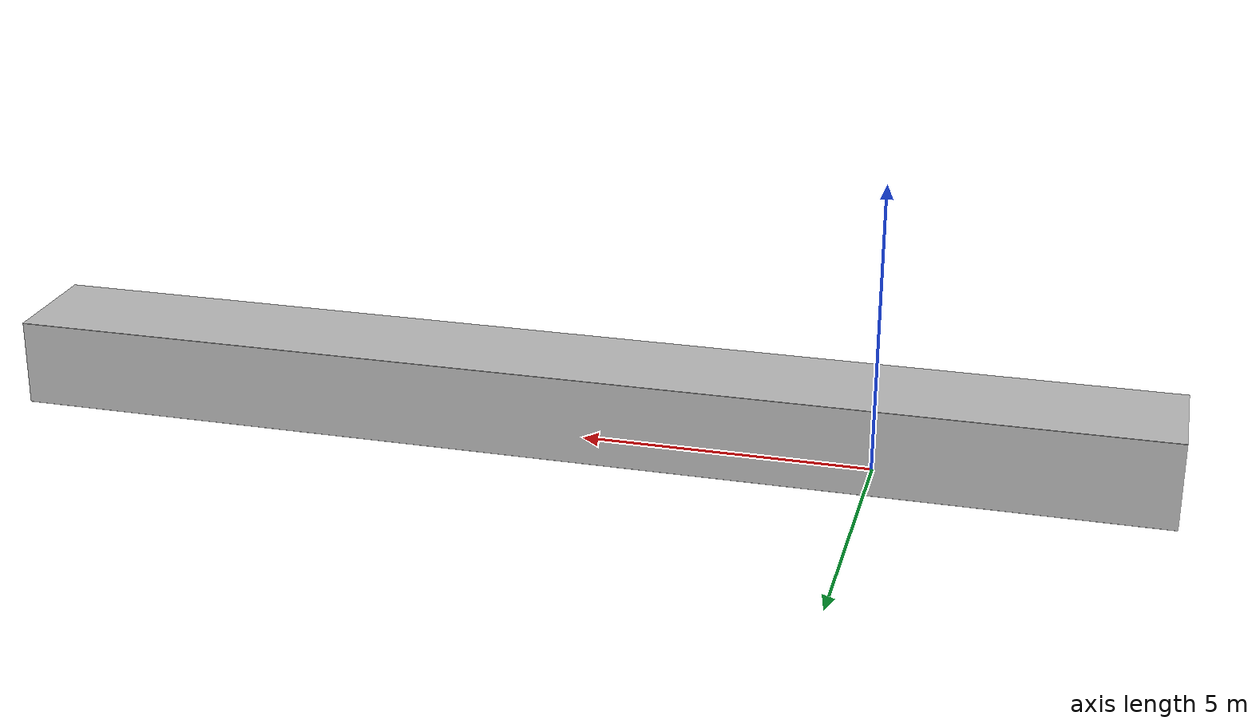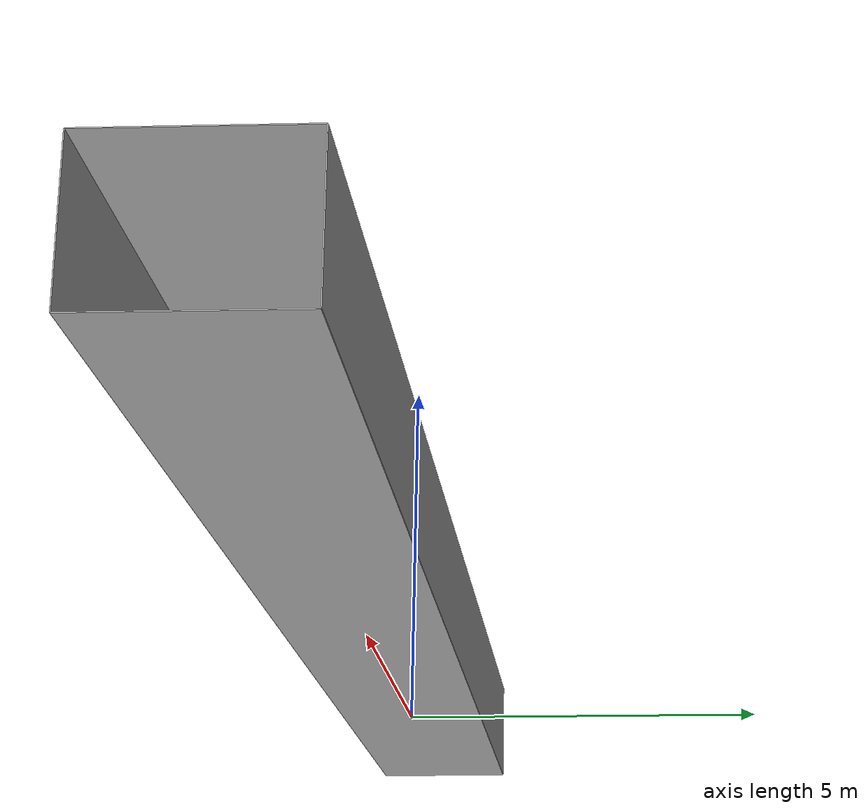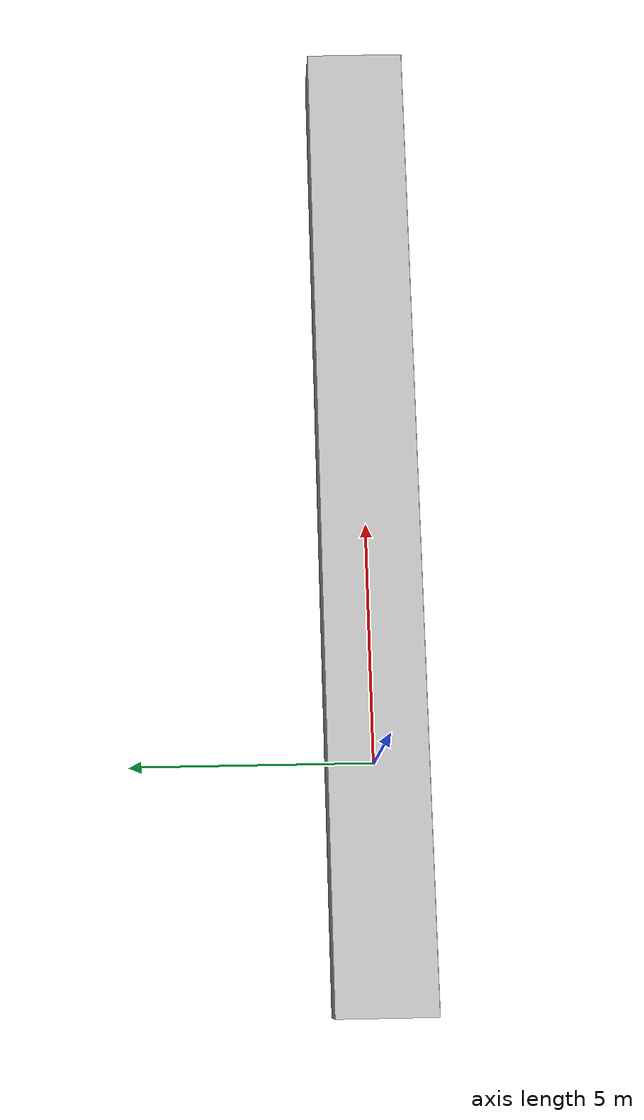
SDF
<?xml version='1.0'?>
<sdf version="1.4">
  <model name="hallway">
    <static>true</static>
    <link name="right_wall">
      <pose>5 -1. 0.75 0 0 0</pose>
      <visual name="visual">
        <geometry>
          <box>
            <size>20 0.01 1.5</size>
          </box>
        </geometry>
        <material>
          <script>
            <uri>model://hallway/materials/scripts</uri>
            <name>feature_1</name>
          </script>
        </material>
      </visual>
      <collision name = "collision">
        <geometry>
        <box>
            <size>20 0.01 1.5</size>
          </box>
        </geometry>
      </collision>
    </link>
    <link name="left_wall">
      <pose>5 1 0.75 0 0 0</pose>
      <visual name="visual">
        <geometry>
          <box>
            <size>20 0.01 1.5</size>
          </box>
        </geometry>
        <material>
          <script>
            <uri>model://hallway/materials/scripts</uri>
            <name>feature_2</name>
          </script>
        </material>
      </visual>
      <collision name = "collision">
        <geometry>
        <box>
            <size>20 0.01 1.5</size>
          </box>
        </geometry>
      </collision>
    </link>
    <link name="bot_wall">
      <pose>5 0 0 0 0 0</pose>
      <visual name="visual">
        <geometry>
          <box>
            <size>20 2.0 0.01</size>
          </box>
        </geometry>
        <material>
          <script>
            <uri>model://hallway/materials/scripts</uri>
            <name>feature_3</name>
          </script>
        </material>
      </visual>
      <collision name = "collision">
        <geometry>
        <box>
            <size>20 2.0 0.01</size>
          </box>
        </geometry>
      </collision>
    </link>
    <link name="top_wall">
      <pose>5 0 1.5 0 0 0</pose>
      <visual name="visual">
        <geometry>
          <box>
            <size>20 2.0 0.01</size>
          </box>
        </geometry>
        <material>
          <script>
            <uri>model://hallway/materials/scripts</uri>
            <name>feature_4</name>
          </script>
        </material>
      </visual>
      <collision name = "collision">
        <geometry>
        <box>
            <size>20 2.0 0.01</size>
          </box>
        </geometry>
      </collision>
    </link>
  </model>
</sdf>
